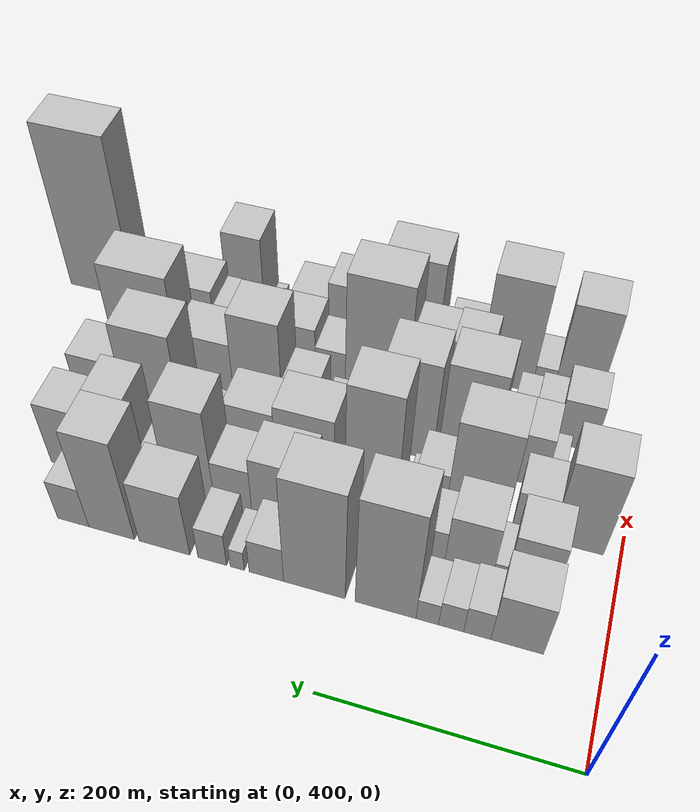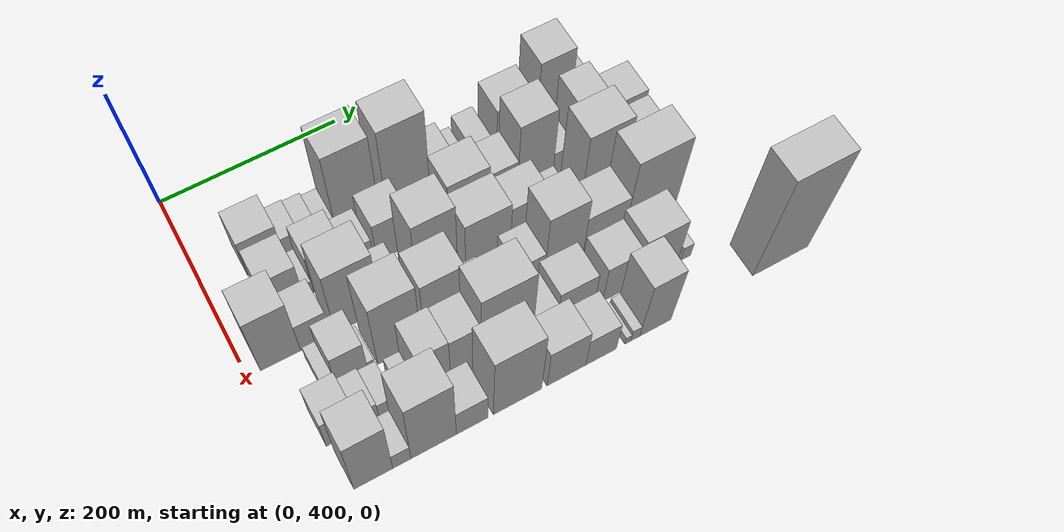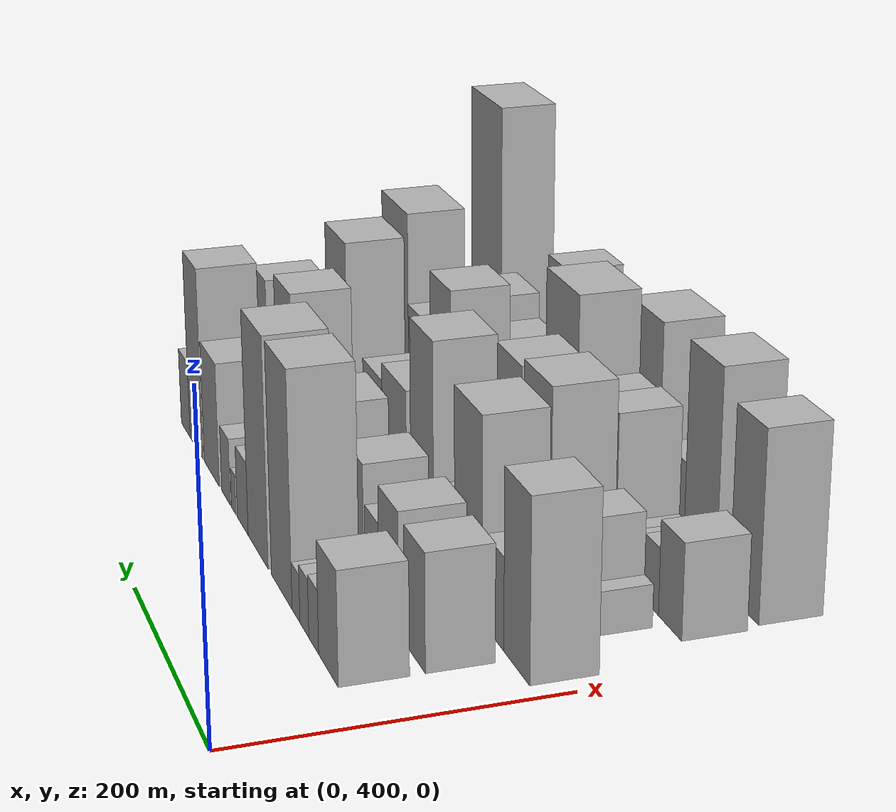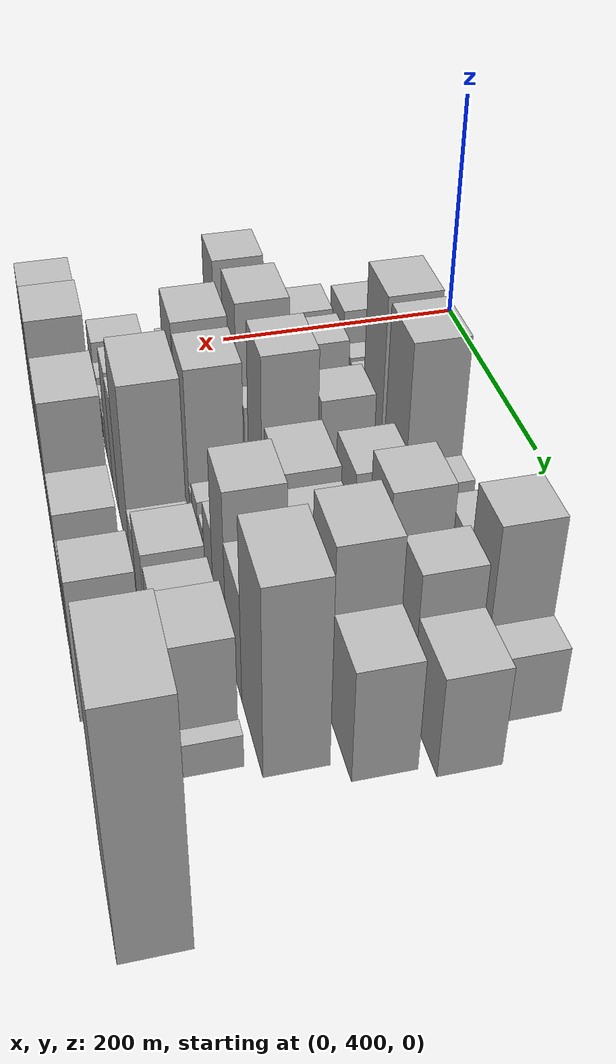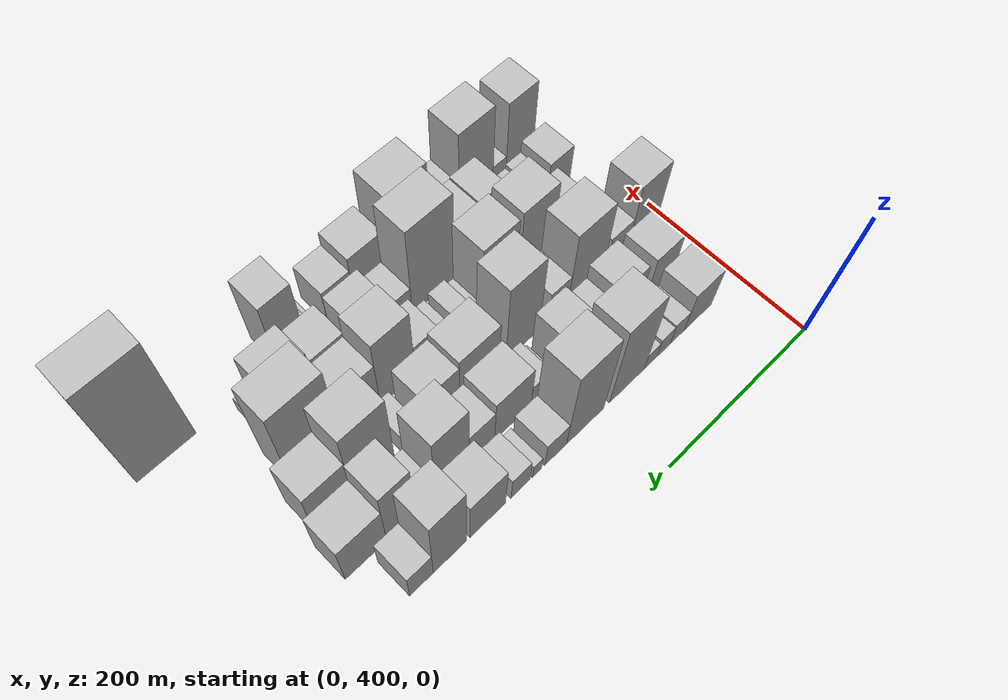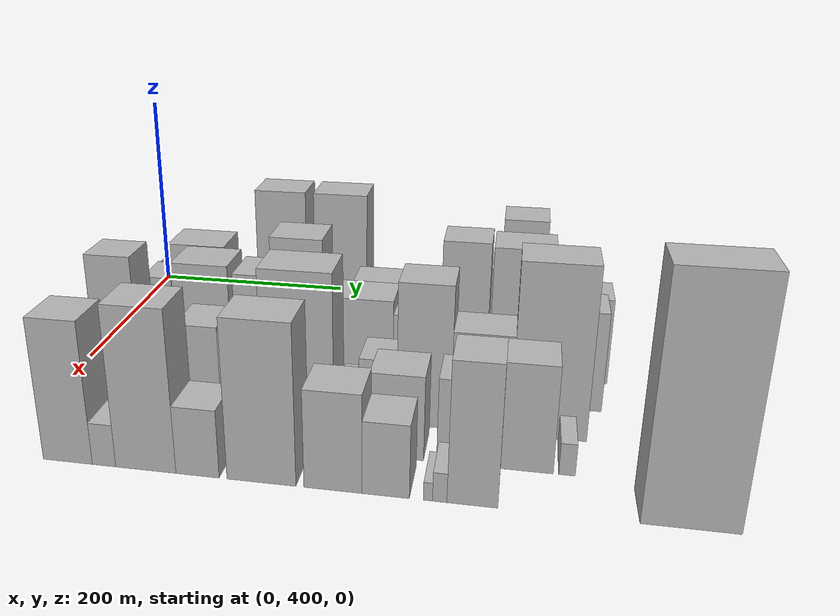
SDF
<sdf version="1.6">
 <world name="default">
  <model name="building_34">
   <static>1</static>
   <pose>100.0000 464.8420 0 0.000000 0.000000 0.000000</pose>
   <link name="link">
    <pose>0 0 34.50 0 0 0</pose>
    <collision name="collision"><geometry><box><size>40.0000 40.3327 69.0000</size></box></geometry></collision>
    <visual name="visual">
     <cast_shadows>0</cast_shadows>
     <geometry><box><size>40.0000 40.3327 69.0000</size></box></geometry>
     <material>
      <script>
       <uri>model://HANNAS_wall/materials/scripts</uri>
       <uri>model://HANNAS_wall/materials/textures</uri>
       <name>vrc/HANNAS_wall</name>
      </script>
     </material>
    </visual>
   </link>
  </model>
  <model name="building_35">
   <static>1</static>
   <pose>100.0000 495.4807 0 0.000000 0.000000 0.000000</pose>
   <link name="link">
    <pose>0 0 19.50 0 0 0</pose>
    <collision name="collision"><geometry><box><size>40.0000 20.9448 39.0000</size></box></geometry></collision>
    <visual name="visual">
     <cast_shadows>0</cast_shadows>
     <geometry><box><size>40.0000 20.9448 39.0000</size></box></geometry>
     <material>
      <script>
       <uri>model://HANNAS_wall/materials/scripts</uri>
       <uri>model://HANNAS_wall/materials/textures</uri>
       <name>vrc/HANNAS_wall</name>
      </script>
     </material>
    </visual>
   </link>
  </model>
  <model name="building_36">
   <static>1</static>
   <pose>100.0000 515.7613 0 0.000000 0.000000 0.000000</pose>
   <link name="link">
    <pose>0 0 18.00 0 0 0</pose>
    <collision name="collision"><geometry><box><size>40.0000 19.6164 36.0000</size></box></geometry></collision>
    <visual name="visual">
     <cast_shadows>0</cast_shadows>
     <geometry><box><size>40.0000 19.6164 36.0000</size></box></geometry>
     <material>
      <script>
       <uri>model://HANNAS_wall/materials/scripts</uri>
       <uri>model://HANNAS_wall/materials/textures</uri>
       <name>vrc/HANNAS_wall</name>
      </script>
     </material>
    </visual>
   </link>
  </model>
  <model name="building_37">
   <static>1</static>
   <pose>100.0000 534.4248 0 0.000000 0.000000 0.000000</pose>
   <link name="link">
    <pose>0 0 15.00 0 0 0</pose>
    <collision name="collision"><geometry><box><size>40.0000 17.7105 30.0000</size></box></geometry></collision>
    <visual name="visual">
     <cast_shadows>0</cast_shadows>
     <geometry><box><size>40.0000 17.7105 30.0000</size></box></geometry>
     <material>
      <script>
       <uri>model://HANNAS_wall/materials/scripts</uri>
       <uri>model://HANNAS_wall/materials/textures</uri>
       <name>vrc/HANNAS_wall</name>
      </script>
     </material>
    </visual>
   </link>
  </model>
  <model name="building_38">
   <static>1</static>
   <pose>100.0000 567.6090 0 0.000000 0.000000 0.000000</pose>
   <link name="link">
    <pose>0 0 73.50 0 0 0</pose>
    <collision name="collision"><geometry><box><size>40.0000 48.6578 147.0000</size></box></geometry></collision>
    <visual name="visual">
     <cast_shadows>0</cast_shadows>
     <geometry><box><size>40.0000 48.6578 147.0000</size></box></geometry>
     <material>
      <script>
       <uri>model://HANNAS_wall/materials/scripts</uri>
       <uri>model://HANNAS_wall/materials/textures</uri>
       <name>vrc/HANNAS_wall</name>
      </script>
     </material>
    </visual>
   </link>
  </model>
  <model name="building_39">
   <static>1</static>
   <pose>100.0000 625.2017 0 0.000000 0.000000 0.000000</pose>
   <link name="link">
    <pose>0 0 73.50 0 0 0</pose>
    <collision name="collision"><geometry><box><size>40.0000 50.5275 147.0000</size></box></geometry></collision>
    <visual name="visual">
     <cast_shadows>0</cast_shadows>
     <geometry><box><size>40.0000 50.5275 147.0000</size></box></geometry>
     <material>
      <script>
       <uri>model://HANNAS_wall/materials/scripts</uri>
       <uri>model://HANNAS_wall/materials/textures</uri>
       <name>vrc/HANNAS_wall</name>
      </script>
     </material>
    </visual>
   </link>
  </model>
  <model name="building_40">
   <static>1</static>
   <pose>100.0000 664.7520 0 0.000000 0.000000 0.000000</pose>
   <link name="link">
    <pose>0 0 24.00 0 0 0</pose>
    <collision name="collision"><geometry><box><size>40.0000 28.5732 48.0000</size></box></geometry></collision>
    <visual name="visual">
     <cast_shadows>0</cast_shadows>
     <geometry><box><size>40.0000 28.5732 48.0000</size></box></geometry>
     <material>
      <script>
       <uri>model://HANNAS_wall/materials/scripts</uri>
       <uri>model://HANNAS_wall/materials/textures</uri>
       <name>vrc/HANNAS_wall</name>
      </script>
     </material>
    </visual>
   </link>
  </model>
  <model name="building_41">
   <static>1</static>
   <pose>100.0000 689.0371 0 0.000000 0.000000 0.000000</pose>
   <link name="link">
    <pose>0 0 13.50 0 0 0</pose>
    <collision name="collision"><geometry><box><size>40.0000 11.9969 27.0000</size></box></geometry></collision>
    <visual name="visual">
     <cast_shadows>0</cast_shadows>
     <geometry><box><size>40.0000 11.9969 27.0000</size></box></geometry>
     <material>
      <script>
       <uri>model://HANNAS_wall/materials/scripts</uri>
       <uri>model://HANNAS_wall/materials/textures</uri>
       <name>vrc/HANNAS_wall</name>
      </script>
     </material>
    </visual>
   </link>
  </model>
  <model name="building_42">
   <static>1</static>
   <pose>100.0000 710.2191 0 0.000000 0.000000 0.000000</pose>
   <link name="link">
    <pose>0 0 22.50 0 0 0</pose>
    <collision name="collision"><geometry><box><size>40.0000 24.3671 45.0000</size></box></geometry></collision>
    <visual name="visual">
     <cast_shadows>0</cast_shadows>
     <geometry><box><size>40.0000 24.3671 45.0000</size></box></geometry>
     <material>
      <script>
       <uri>model://HANNAS_wall/materials/scripts</uri>
       <uri>model://HANNAS_wall/materials/textures</uri>
       <name>vrc/HANNAS_wall</name>
      </script>
     </material>
    </visual>
   </link>
  </model>
  <model name="building_43">
   <static>1</static>
   <pose>100.0000 751.3735 0 0.000000 0.000000 0.000000</pose>
   <link name="link">
    <pose>0 0 42.00 0 0 0</pose>
    <collision name="collision"><geometry><box><size>40.0000 43.9418 84.0000</size></box></geometry></collision>
    <visual name="visual">
     <cast_shadows>0</cast_shadows>
     <geometry><box><size>40.0000 43.9418 84.0000</size></box></geometry>
     <material>
      <script>
       <uri>model://HANNAS_wall/materials/scripts</uri>
       <uri>model://HANNAS_wall/materials/textures</uri>
       <name>vrc/HANNAS_wall</name>
      </script>
     </material>
    </visual>
   </link>
  </model>
  <model name="building_44">
   <static>1</static>
   <pose>100.0000 797.4635 0 0.000000 0.000000 0.000000</pose>
   <link name="link">
    <pose>0 0 66.00 0 0 0</pose>
    <collision name="collision"><geometry><box><size>40.0000 40.2381 132.0000</size></box></geometry></collision>
    <visual name="visual">
     <cast_shadows>0</cast_shadows>
     <geometry><box><size>40.0000 40.2381 132.0000</size></box></geometry>
     <material>
      <script>
       <uri>model://HANNAS_wall/materials/scripts</uri>
       <uri>model://HANNAS_wall/materials/textures</uri>
       <name>vrc/HANNAS_wall</name>
      </script>
     </material>
    </visual>
   </link>
  </model>
  <model name="building_45">
   <static>1</static>
   <pose>100.0000 831.5368 0 0.000000 0.000000 0.000000</pose>
   <link name="link">
    <pose>0 0 27.00 0 0 0</pose>
    <collision name="collision"><geometry><box><size>40.0000 27.9085 54.0000</size></box></geometry></collision>
    <visual name="visual">
     <cast_shadows>0</cast_shadows>
     <geometry><box><size>40.0000 27.9085 54.0000</size></box></geometry>
     <material>
      <script>
       <uri>model://HANNAS_wall/materials/scripts</uri>
       <uri>model://HANNAS_wall/materials/textures</uri>
       <name>vrc/HANNAS_wall</name>
      </script>
     </material>
    </visual>
   </link>
  </model>
  <model name="building_83">
   <static>1</static>
   <pose>149.0000 464.2400 0 0.000000 0.000000 0.000000</pose>
   <link name="link">
    <pose>0 0 36.00 0 0 0</pose>
    <collision name="collision"><geometry><box><size>40.0000 38.5891 72.0000</size></box></geometry></collision>
    <visual name="visual">
     <cast_shadows>0</cast_shadows>
     <geometry><box><size>40.0000 38.5891 72.0000</size></box></geometry>
     <material>
      <script>
       <uri>model://HANNAS_wall/materials/scripts</uri>
       <uri>model://HANNAS_wall/materials/textures</uri>
       <name>vrc/HANNAS_wall</name>
      </script>
     </material>
    </visual>
   </link>
  </model>
  <model name="building_84">
   <static>1</static>
   <pose>149.0000 488.9925 0 0.000000 0.000000 0.000000</pose>
   <link name="link">
    <pose>0 0 13.50 0 0 0</pose>
    <collision name="collision"><geometry><box><size>40.0000 10.9159 27.0000</size></box></geometry></collision>
    <visual name="visual">
     <cast_shadows>0</cast_shadows>
     <geometry><box><size>40.0000 10.9159 27.0000</size></box></geometry>
     <material>
      <script>
       <uri>model://HANNAS_wall/materials/scripts</uri>
       <uri>model://HANNAS_wall/materials/textures</uri>
       <name>vrc/HANNAS_wall</name>
      </script>
     </material>
    </visual>
   </link>
  </model>
  <model name="building_85">
   <static>1</static>
   <pose>149.0000 513.8395 0 0.000000 0.000000 0.000000</pose>
   <link name="link">
    <pose>0 0 37.50 0 0 0</pose>
    <collision name="collision"><geometry><box><size>40.0000 38.7780 75.0000</size></box></geometry></collision>
    <visual name="visual">
     <cast_shadows>0</cast_shadows>
     <geometry><box><size>40.0000 38.7780 75.0000</size></box></geometry>
     <material>
      <script>
       <uri>model://HANNAS_wall/materials/scripts</uri>
       <uri>model://HANNAS_wall/materials/textures</uri>
       <name>vrc/HANNAS_wall</name>
      </script>
     </material>
    </visual>
   </link>
  </model>
  <model name="building_86">
   <static>1</static>
   <pose>149.0000 547.3822 0 0.000000 0.000000 0.000000</pose>
   <link name="link">
    <pose>0 0 25.50 0 0 0</pose>
    <collision name="collision"><geometry><box><size>40.0000 28.3073 51.0000</size></box></geometry></collision>
    <visual name="visual">
     <cast_shadows>0</cast_shadows>
     <geometry><box><size>40.0000 28.3073 51.0000</size></box></geometry>
     <material>
      <script>
       <uri>model://HANNAS_wall/materials/scripts</uri>
       <uri>model://HANNAS_wall/materials/textures</uri>
       <name>vrc/HANNAS_wall</name>
      </script>
     </material>
    </visual>
   </link>
  </model>
  <model name="building_87">
   <static>1</static>
   <pose>149.0000 584.1058 0 0.000000 0.000000 0.000000</pose>
   <link name="link">
    <pose>0 0 37.50 0 0 0</pose>
    <collision name="collision"><geometry><box><size>40.0000 39.1398 75.0000</size></box></geometry></collision>
    <visual name="visual">
     <cast_shadows>0</cast_shadows>
     <geometry><box><size>40.0000 39.1398 75.0000</size></box></geometry>
     <material>
      <script>
       <uri>model://HANNAS_wall/materials/scripts</uri>
       <uri>model://HANNAS_wall/materials/textures</uri>
       <name>vrc/HANNAS_wall</name>
      </script>
     </material>
    </visual>
   </link>
  </model>
  <model name="building_88">
   <static>1</static>
   <pose>149.0000 616.5047 0 0.000000 0.000000 0.000000</pose>
   <link name="link">
    <pose>0 0 10.50 0 0 0</pose>
    <collision name="collision"><geometry><box><size>40.0000 9.6579 21.0000</size></box></geometry></collision>
    <visual name="visual">
     <cast_shadows>0</cast_shadows>
     <geometry><box><size>40.0000 9.6579 21.0000</size></box></geometry>
     <material>
      <script>
       <uri>model://HANNAS_wall/materials/scripts</uri>
       <uri>model://HANNAS_wall/materials/textures</uri>
       <name>vrc/HANNAS_wall</name>
      </script>
     </material>
    </visual>
   </link>
  </model>
  <model name="building_89">
   <static>1</static>
   <pose>149.0000 633.7374 0 0.000000 0.000000 0.000000</pose>
   <link name="link">
    <pose>0 0 21.00 0 0 0</pose>
    <collision name="collision"><geometry><box><size>40.0000 24.8075 42.0000</size></box></geometry></collision>
    <visual name="visual">
     <cast_shadows>0</cast_shadows>
     <geometry><box><size>40.0000 24.8075 42.0000</size></box></geometry>
     <material>
      <script>
       <uri>model://HANNAS_wall/materials/scripts</uri>
       <uri>model://HANNAS_wall/materials/textures</uri>
       <name>vrc/HANNAS_wall</name>
      </script>
     </material>
    </visual>
   </link>
  </model>
  <model name="building_90">
   <static>1</static>
   <pose>149.0000 670.0662 0 0.000000 0.000000 0.000000</pose>
   <link name="link">
    <pose>0 0 40.50 0 0 0</pose>
    <collision name="collision"><geometry><box><size>40.0000 47.8502 81.0000</size></box></geometry></collision>
    <visual name="visual">
     <cast_shadows>0</cast_shadows>
     <geometry><box><size>40.0000 47.8502 81.0000</size></box></geometry>
     <material>
      <script>
       <uri>model://HANNAS_wall/materials/scripts</uri>
       <uri>model://HANNAS_wall/materials/textures</uri>
       <name>vrc/HANNAS_wall</name>
      </script>
     </material>
    </visual>
   </link>
  </model>
  <model name="building_91">
   <static>1</static>
   <pose>149.0000 710.2946 0 0.000000 0.000000 0.000000</pose>
   <link name="link">
    <pose>0 0 31.50 0 0 0</pose>
    <collision name="collision"><geometry><box><size>40.0000 32.6065 63.0000</size></box></geometry></collision>
    <visual name="visual">
     <cast_shadows>0</cast_shadows>
     <geometry><box><size>40.0000 32.6065 63.0000</size></box></geometry>
     <material>
      <script>
       <uri>model://HANNAS_wall/materials/scripts</uri>
       <uri>model://HANNAS_wall/materials/textures</uri>
       <name>vrc/HANNAS_wall</name>
      </script>
     </material>
    </visual>
   </link>
  </model>
  <model name="building_92">
   <static>1</static>
   <pose>149.0000 747.6645 0 0.000000 0.000000 0.000000</pose>
   <link name="link">
    <pose>0 0 63.00 0 0 0</pose>
    <collision name="collision"><geometry><box><size>40.0000 42.1333 126.0000</size></box></geometry></collision>
    <visual name="visual">
     <cast_shadows>0</cast_shadows>
     <geometry><box><size>40.0000 42.1333 126.0000</size></box></geometry>
     <material>
      <script>
       <uri>model://HANNAS_wall/materials/scripts</uri>
       <uri>model://HANNAS_wall/materials/textures</uri>
       <name>vrc/HANNAS_wall</name>
      </script>
     </material>
    </visual>
   </link>
  </model>
  <model name="building_93">
   <static>1</static>
   <pose>149.0000 780.6941 0 0.000000 0.000000 0.000000</pose>
   <link name="link">
    <pose>0 0 21.00 0 0 0</pose>
    <collision name="collision"><geometry><box><size>40.0000 23.9260 42.0000</size></box></geometry></collision>
    <visual name="visual">
     <cast_shadows>0</cast_shadows>
     <geometry><box><size>40.0000 23.9260 42.0000</size></box></geometry>
     <material>
      <script>
       <uri>model://HANNAS_wall/materials/scripts</uri>
       <uri>model://HANNAS_wall/materials/textures</uri>
       <name>vrc/HANNAS_wall</name>
      </script>
     </material>
    </visual>
   </link>
  </model>
  <model name="building_94">
   <static>1</static>
   <pose>149.0000 809.8455 0 0.000000 0.000000 0.000000</pose>
   <link name="link">
    <pose>0 0 57.00 0 0 0</pose>
    <collision name="collision"><geometry><box><size>40.0000 34.3768 114.0000</size></box></geometry></collision>
    <visual name="visual">
     <cast_shadows>0</cast_shadows>
     <geometry><box><size>40.0000 34.3768 114.0000</size></box></geometry>
     <material>
      <script>
       <uri>model://HANNAS_wall/materials/scripts</uri>
       <uri>model://HANNAS_wall/materials/textures</uri>
       <name>vrc/HANNAS_wall</name>
      </script>
     </material>
    </visual>
   </link>
  </model>
  <model name="building_95">
   <static>1</static>
   <pose>149.0000 851.2363 0 0.000000 0.000000 0.000000</pose>
   <link name="link">
    <pose>0 0 40.50 0 0 0</pose>
    <collision name="collision"><geometry><box><size>40.0000 48.4048 81.0000</size></box></geometry></collision>
    <visual name="visual">
     <cast_shadows>0</cast_shadows>
     <geometry><box><size>40.0000 48.4048 81.0000</size></box></geometry>
     <material>
      <script>
       <uri>model://HANNAS_wall/materials/scripts</uri>
       <uri>model://HANNAS_wall/materials/textures</uri>
       <name>vrc/HANNAS_wall</name>
      </script>
     </material>
    </visual>
   </link>
  </model>
  <model name="building_135">
   <static>1</static>
   <pose>198.0000 435.4291 0 0.000000 0.000000 0.000000</pose>
   <link name="link">
    <pose>0 0 55.50 0 0 0</pose>
    <collision name="collision"><geometry><box><size>40.0000 42.5235 111.0000</size></box></geometry></collision>
    <visual name="visual">
     <cast_shadows>0</cast_shadows>
     <geometry><box><size>40.0000 42.5235 111.0000</size></box></geometry>
     <material>
      <script>
       <uri>model://HANNAS_wall/materials/scripts</uri>
       <uri>model://HANNAS_wall/materials/textures</uri>
       <name>vrc/HANNAS_wall</name>
      </script>
     </material>
    </visual>
   </link>
  </model>
  <model name="building_136">
   <static>1</static>
   <pose>198.0000 472.8074 0 0.000000 0.000000 0.000000</pose>
   <link name="link">
    <pose>0 0 28.50 0 0 0</pose>
    <collision name="collision"><geometry><box><size>40.0000 32.2330 57.0000</size></box></geometry></collision>
    <visual name="visual">
     <cast_shadows>0</cast_shadows>
     <geometry><box><size>40.0000 32.2330 57.0000</size></box></geometry>
     <material>
      <script>
       <uri>model://HANNAS_wall/materials/scripts</uri>
       <uri>model://HANNAS_wall/materials/textures</uri>
       <name>vrc/HANNAS_wall</name>
      </script>
     </material>
    </visual>
   </link>
  </model>
  <model name="building_137">
   <static>1</static>
   <pose>198.0000 518.8734 0 0.000000 0.000000 0.000000</pose>
   <link name="link">
    <pose>0 0 63.00 0 0 0</pose>
    <collision name="collision"><geometry><box><size>40.0000 49.8991 126.0000</size></box></geometry></collision>
    <visual name="visual">
     <cast_shadows>0</cast_shadows>
     <geometry><box><size>40.0000 49.8991 126.0000</size></box></geometry>
     <material>
      <script>
       <uri>model://HANNAS_wall/materials/scripts</uri>
       <uri>model://HANNAS_wall/materials/textures</uri>
       <name>vrc/HANNAS_wall</name>
      </script>
     </material>
    </visual>
   </link>
  </model>
  <model name="building_138">
   <static>1</static>
   <pose>198.0000 557.5370 0 0.000000 0.000000 0.000000</pose>
   <link name="link">
    <pose>0 0 27.00 0 0 0</pose>
    <collision name="collision"><geometry><box><size>40.0000 27.4281 54.0000</size></box></geometry></collision>
    <visual name="visual">
     <cast_shadows>0</cast_shadows>
     <geometry><box><size>40.0000 27.4281 54.0000</size></box></geometry>
     <material>
      <script>
       <uri>model://HANNAS_wall/materials/scripts</uri>
       <uri>model://HANNAS_wall/materials/textures</uri>
       <name>vrc/HANNAS_wall</name>
      </script>
     </material>
    </visual>
   </link>
  </model>
  <model name="building_139">
   <static>1</static>
   <pose>198.0000 575.2165 0 0.000000 0.000000 0.000000</pose>
   <link name="link">
    <pose>0 0 9.00 0 0 0</pose>
    <collision name="collision"><geometry><box><size>40.0000 7.9308 18.0000</size></box></geometry></collision>
    <visual name="visual">
     <cast_shadows>0</cast_shadows>
     <geometry><box><size>40.0000 7.9308 18.0000</size></box></geometry>
     <material>
      <script>
       <uri>model://HANNAS_wall/materials/scripts</uri>
       <uri>model://HANNAS_wall/materials/textures</uri>
       <name>vrc/HANNAS_wall</name>
      </script>
     </material>
    </visual>
   </link>
  </model>
  <model name="building_140">
   <static>1</static>
   <pose>198.0000 607.0164 0 0.000000 0.000000 0.000000</pose>
   <link name="link">
    <pose>0 0 69.00 0 0 0</pose>
    <collision name="collision"><geometry><box><size>40.0000 45.6691 138.0000</size></box></geometry></collision>
    <visual name="visual">
     <cast_shadows>0</cast_shadows>
     <geometry><box><size>40.0000 45.6691 138.0000</size></box></geometry>
     <material>
      <script>
       <uri>model://HANNAS_wall/materials/scripts</uri>
       <uri>model://HANNAS_wall/materials/textures</uri>
       <name>vrc/HANNAS_wall</name>
      </script>
     </material>
    </visual>
   </link>
  </model>
  <model name="building_141">
   <static>1</static>
   <pose>198.0000 664.7125 0 0.000000 0.000000 0.000000</pose>
   <link name="link">
    <pose>0 0 43.50 0 0 0</pose>
    <collision name="collision"><geometry><box><size>40.0000 51.7230 87.0000</size></box></geometry></collision>
    <visual name="visual">
     <cast_shadows>0</cast_shadows>
     <geometry><box><size>40.0000 51.7230 87.0000</size></box></geometry>
     <material>
      <script>
       <uri>model://HANNAS_wall/materials/scripts</uri>
       <uri>model://HANNAS_wall/materials/textures</uri>
       <name>vrc/HANNAS_wall</name>
      </script>
     </material>
    </visual>
   </link>
  </model>
  <model name="building_142">
   <static>1</static>
   <pose>198.0000 712.3191 0 0.000000 0.000000 0.000000</pose>
   <link name="link">
    <pose>0 0 37.50 0 0 0</pose>
    <collision name="collision"><geometry><box><size>40.0000 43.4901 75.0000</size></box></geometry></collision>
    <visual name="visual">
     <cast_shadows>0</cast_shadows>
     <geometry><box><size>40.0000 43.4901 75.0000</size></box></geometry>
     <material>
      <script>
       <uri>model://HANNAS_wall/materials/scripts</uri>
       <uri>model://HANNAS_wall/materials/textures</uri>
       <name>vrc/HANNAS_wall</name>
      </script>
     </material>
    </visual>
   </link>
  </model>
  <model name="building_143">
   <static>1</static>
   <pose>198.0000 751.0375 0 0.000000 0.000000 0.000000</pose>
   <link name="link">
    <pose>0 0 19.50 0 0 0</pose>
    <collision name="collision"><geometry><box><size>40.0000 21.9467 39.0000</size></box></geometry></collision>
    <visual name="visual">
     <cast_shadows>0</cast_shadows>
     <geometry><box><size>40.0000 21.9467 39.0000</size></box></geometry>
     <material>
      <script>
       <uri>model://HANNAS_wall/materials/scripts</uri>
       <uri>model://HANNAS_wall/materials/textures</uri>
       <name>vrc/HANNAS_wall</name>
      </script>
     </material>
    </visual>
   </link>
  </model>
  <model name="building_144">
   <static>1</static>
   <pose>198.0000 797.0675 0 0.000000 0.000000 0.000000</pose>
   <link name="link">
    <pose>0 0 70.50 0 0 0</pose>
    <collision name="collision"><geometry><box><size>40.0000 50.1134 141.0000</size></box></geometry></collision>
    <visual name="visual">
     <cast_shadows>0</cast_shadows>
     <geometry><box><size>40.0000 50.1134 141.0000</size></box></geometry>
     <material>
      <script>
       <uri>model://HANNAS_wall/materials/scripts</uri>
       <uri>model://HANNAS_wall/materials/textures</uri>
       <name>vrc/HANNAS_wall</name>
      </script>
     </material>
    </visual>
   </link>
  </model>
  <model name="building_145">
   <static>1</static>
   <pose>198.0000 844.8766 0 0.000000 0.000000 0.000000</pose>
   <link name="link">
    <pose>0 0 45.00 0 0 0</pose>
    <collision name="collision"><geometry><box><size>40.0000 45.5047 90.0000</size></box></geometry></collision>
    <visual name="visual">
     <cast_shadows>0</cast_shadows>
     <geometry><box><size>40.0000 45.5047 90.0000</size></box></geometry>
     <material>
      <script>
       <uri>model://HANNAS_wall/materials/scripts</uri>
       <uri>model://HANNAS_wall/materials/textures</uri>
       <name>vrc/HANNAS_wall</name>
      </script>
     </material>
    </visual>
   </link>
  </model>
  <model name="building_176">
   <static>1</static>
   <pose>247.0000 463.9547 0 0.000000 0.000000 0.000000</pose>
   <link name="link">
    <pose>0 0 13.50 0 0 0</pose>
    <collision name="collision"><geometry><box><size>40.0000 13.2335 27.0000</size></box></geometry></collision>
    <visual name="visual">
     <cast_shadows>0</cast_shadows>
     <geometry><box><size>40.0000 13.2335 27.0000</size></box></geometry>
     <material>
      <script>
       <uri>model://HANNAS_wall/materials/scripts</uri>
       <uri>model://HANNAS_wall/materials/textures</uri>
       <name>vrc/HANNAS_wall</name>
      </script>
     </material>
    </visual>
   </link>
  </model>
  <model name="building_177">
   <static>1</static>
   <pose>247.0000 487.5610 0 0.000000 0.000000 0.000000</pose>
   <link name="link">
    <pose>0 0 33.00 0 0 0</pose>
    <collision name="collision"><geometry><box><size>40.0000 33.9789 66.0000</size></box></geometry></collision>
    <visual name="visual">
     <cast_shadows>0</cast_shadows>
     <geometry><box><size>40.0000 33.9789 66.0000</size></box></geometry>
     <material>
      <script>
       <uri>model://HANNAS_wall/materials/scripts</uri>
       <uri>model://HANNAS_wall/materials/textures</uri>
       <name>vrc/HANNAS_wall</name>
      </script>
     </material>
    </visual>
   </link>
  </model>
  <model name="building_178">
   <static>1</static>
   <pose>247.0000 508.5091 0 0.000000 0.000000 0.000000</pose>
   <link name="link">
    <pose>0 0 9.00 0 0 0</pose>
    <collision name="collision"><geometry><box><size>40.0000 7.9173 18.0000</size></box></geometry></collision>
    <visual name="visual">
     <cast_shadows>0</cast_shadows>
     <geometry><box><size>40.0000 7.9173 18.0000</size></box></geometry>
     <material>
      <script>
       <uri>model://HANNAS_wall/materials/scripts</uri>
       <uri>model://HANNAS_wall/materials/textures</uri>
       <name>vrc/HANNAS_wall</name>
      </script>
     </material>
    </visual>
   </link>
  </model>
  <model name="building_179">
   <static>1</static>
   <pose>247.0000 539.0557 0 0.000000 0.000000 0.000000</pose>
   <link name="link">
    <pose>0 0 64.50 0 0 0</pose>
    <collision name="collision"><geometry><box><size>40.0000 47.1760 129.0000</size></box></geometry></collision>
    <visual name="visual">
     <cast_shadows>0</cast_shadows>
     <geometry><box><size>40.0000 47.1760 129.0000</size></box></geometry>
     <material>
      <script>
       <uri>model://HANNAS_wall/materials/scripts</uri>
       <uri>model://HANNAS_wall/materials/textures</uri>
       <name>vrc/HANNAS_wall</name>
      </script>
     </material>
    </visual>
   </link>
  </model>
  <model name="building_180">
   <static>1</static>
   <pose>247.0000 589.5727 0 0.000000 0.000000 0.000000</pose>
   <link name="link">
    <pose>0 0 61.50 0 0 0</pose>
    <collision name="collision"><geometry><box><size>40.0000 45.8581 123.0000</size></box></geometry></collision>
    <visual name="visual">
     <cast_shadows>0</cast_shadows>
     <geometry><box><size>40.0000 45.8581 123.0000</size></box></geometry>
     <material>
      <script>
       <uri>model://HANNAS_wall/materials/scripts</uri>
       <uri>model://HANNAS_wall/materials/textures</uri>
       <name>vrc/HANNAS_wall</name>
      </script>
     </material>
    </visual>
   </link>
  </model>
  <model name="building_181">
   <static>1</static>
   <pose>247.0000 618.2442 0 0.000000 0.000000 0.000000</pose>
   <link name="link">
    <pose>0 0 12.00 0 0 0</pose>
    <collision name="collision"><geometry><box><size>40.0000 11.4848 24.0000</size></box></geometry></collision>
    <visual name="visual">
     <cast_shadows>0</cast_shadows>
     <geometry><box><size>40.0000 11.4848 24.0000</size></box></geometry>
     <material>
      <script>
       <uri>model://HANNAS_wall/materials/scripts</uri>
       <uri>model://HANNAS_wall/materials/textures</uri>
       <name>vrc/HANNAS_wall</name>
      </script>
     </material>
    </visual>
   </link>
  </model>
  <model name="building_182">
   <static>1</static>
   <pose>247.0000 634.6704 0 0.000000 0.000000 0.000000</pose>
   <link name="link">
    <pose>0 0 18.00 0 0 0</pose>
    <collision name="collision"><geometry><box><size>40.0000 21.3677 36.0000</size></box></geometry></collision>
    <visual name="visual">
     <cast_shadows>0</cast_shadows>
     <geometry><box><size>40.0000 21.3677 36.0000</size></box></geometry>
     <material>
      <script>
       <uri>model://HANNAS_wall/materials/scripts</uri>
       <uri>model://HANNAS_wall/materials/textures</uri>
       <name>vrc/HANNAS_wall</name>
      </script>
     </material>
    </visual>
   </link>
  </model>
  <model name="building_183">
   <static>1</static>
   <pose>247.0000 658.0004 0 0.000000 0.000000 0.000000</pose>
   <link name="link">
    <pose>0 0 15.00 0 0 0</pose>
    <collision name="collision"><geometry><box><size>40.0000 15.2922 30.0000</size></box></geometry></collision>
    <visual name="visual">
     <cast_shadows>0</cast_shadows>
     <geometry><box><size>40.0000 15.2922 30.0000</size></box></geometry>
     <material>
      <script>
       <uri>model://HANNAS_wall/materials/scripts</uri>
       <uri>model://HANNAS_wall/materials/textures</uri>
       <name>vrc/HANNAS_wall</name>
      </script>
     </material>
    </visual>
   </link>
  </model>
  <model name="building_184">
   <static>1</static>
   <pose>247.0000 685.2985 0 0.000000 0.000000 0.000000</pose>
   <link name="link">
    <pose>0 0 28.50 0 0 0</pose>
    <collision name="collision"><geometry><box><size>40.0000 31.3041 57.0000</size></box></geometry></collision>
    <visual name="visual">
     <cast_shadows>0</cast_shadows>
     <geometry><box><size>40.0000 31.3041 57.0000</size></box></geometry>
     <material>
      <script>
       <uri>model://HANNAS_wall/materials/scripts</uri>
       <uri>model://HANNAS_wall/materials/textures</uri>
       <name>vrc/HANNAS_wall</name>
      </script>
     </material>
    </visual>
   </link>
  </model>
  <model name="building_185">
   <static>1</static>
   <pose>247.0000 723.0035 0 0.000000 0.000000 0.000000</pose>
   <link name="link">
    <pose>0 0 63.00 0 0 0</pose>
    <collision name="collision"><geometry><box><size>40.0000 44.1059 126.0000</size></box></geometry></collision>
    <visual name="visual">
     <cast_shadows>0</cast_shadows>
     <geometry><box><size>40.0000 44.1059 126.0000</size></box></geometry>
     <material>
      <script>
       <uri>model://HANNAS_wall/materials/scripts</uri>
       <uri>model://HANNAS_wall/materials/textures</uri>
       <name>vrc/HANNAS_wall</name>
      </script>
     </material>
    </visual>
   </link>
  </model>
  <model name="building_186">
   <static>1</static>
   <pose>247.0000 769.2502 0 0.000000 0.000000 0.000000</pose>
   <link name="link">
    <pose>0 0 43.50 0 0 0</pose>
    <collision name="collision"><geometry><box><size>40.0000 48.3873 87.0000</size></box></geometry></collision>
    <visual name="visual">
     <cast_shadows>0</cast_shadows>
     <geometry><box><size>40.0000 48.3873 87.0000</size></box></geometry>
     <material>
      <script>
       <uri>model://HANNAS_wall/materials/scripts</uri>
       <uri>model://HANNAS_wall/materials/textures</uri>
       <name>vrc/HANNAS_wall</name>
      </script>
     </material>
    </visual>
   </link>
  </model>
  <model name="building_187">
   <static>1</static>
   <pose>247.0000 823.2856 0 0.000000 0.000000 0.000000</pose>
   <link name="link">
    <pose>0 0 75.00 0 0 0</pose>
    <collision name="collision"><geometry><box><size>40.0000 59.6836 150.0000</size></box></geometry></collision>
    <visual name="visual">
     <cast_shadows>0</cast_shadows>
     <geometry><box><size>40.0000 59.6836 150.0000</size></box></geometry>
     <material>
      <script>
       <uri>model://HANNAS_wall/materials/scripts</uri>
       <uri>model://HANNAS_wall/materials/textures</uri>
       <name>vrc/HANNAS_wall</name>
      </script>
     </material>
    </visual>
   </link>
  </model>
  <model name="building_226">
   <static>1</static>
   <pose>296.0000 453.4264 0 0.000000 0.000000 0.000000</pose>
   <link name="link">
    <pose>0 0 30.00 0 0 0</pose>
    <collision name="collision"><geometry><box><size>40.0000 33.5715 60.0000</size></box></geometry></collision>
    <visual name="visual">
     <cast_shadows>0</cast_shadows>
     <geometry><box><size>40.0000 33.5715 60.0000</size></box></geometry>
     <material>
      <script>
       <uri>model://HANNAS_wall/materials/scripts</uri>
       <uri>model://HANNAS_wall/materials/textures</uri>
       <name>vrc/HANNAS_wall</name>
      </script>
     </material>
    </visual>
   </link>
  </model>
  <model name="building_227">
   <static>1</static>
   <pose>296.0000 481.0916 0 0.000000 0.000000 0.000000</pose>
   <link name="link">
    <pose>0 0 21.00 0 0 0</pose>
    <collision name="collision"><geometry><box><size>40.0000 21.7590 42.0000</size></box></geometry></collision>
    <visual name="visual">
     <cast_shadows>0</cast_shadows>
     <geometry><box><size>40.0000 21.7590 42.0000</size></box></geometry>
     <material>
      <script>
       <uri>model://HANNAS_wall/materials/scripts</uri>
       <uri>model://HANNAS_wall/materials/textures</uri>
       <name>vrc/HANNAS_wall</name>
      </script>
     </material>
    </visual>
   </link>
  </model>
  <model name="building_228">
   <static>1</static>
   <pose>296.0000 501.3352 0 0.000000 0.000000 0.000000</pose>
   <link name="link">
    <pose>0 0 18.00 0 0 0</pose>
    <collision name="collision"><geometry><box><size>40.0000 18.7280 36.0000</size></box></geometry></collision>
    <visual name="visual">
     <cast_shadows>0</cast_shadows>
     <geometry><box><size>40.0000 18.7280 36.0000</size></box></geometry>
     <material>
      <script>
       <uri>model://HANNAS_wall/materials/scripts</uri>
       <uri>model://HANNAS_wall/materials/textures</uri>
       <name>vrc/HANNAS_wall</name>
      </script>
     </material>
    </visual>
   </link>
  </model>
  <model name="building_229">
   <static>1</static>
   <pose>296.0000 527.1478 0 0.000000 0.000000 0.000000</pose>
   <link name="link">
    <pose>0 0 15.00 0 0 0</pose>
    <collision name="collision"><geometry><box><size>40.0000 16.8973 30.0000</size></box></geometry></collision>
    <visual name="visual">
     <cast_shadows>0</cast_shadows>
     <geometry><box><size>40.0000 16.8973 30.0000</size></box></geometry>
     <material>
      <script>
       <uri>model://HANNAS_wall/materials/scripts</uri>
       <uri>model://HANNAS_wall/materials/textures</uri>
       <name>vrc/HANNAS_wall</name>
      </script>
     </material>
    </visual>
   </link>
  </model>
  <model name="building_230">
   <static>1</static>
   <pose>296.0000 552.1916 0 0.000000 0.000000 0.000000</pose>
   <link name="link">
    <pose>0 0 49.50 0 0 0</pose>
    <collision name="collision"><geometry><box><size>40.0000 33.1902 99.0000</size></box></geometry></collision>
    <visual name="visual">
     <cast_shadows>0</cast_shadows>
     <geometry><box><size>40.0000 33.1902 99.0000</size></box></geometry>
     <material>
      <script>
       <uri>model://HANNAS_wall/materials/scripts</uri>
       <uri>model://HANNAS_wall/materials/textures</uri>
       <name>vrc/HANNAS_wall</name>
      </script>
     </material>
    </visual>
   </link>
  </model>
  <model name="building_231">
   <static>1</static>
   <pose>296.0000 585.4190 0 0.000000 0.000000 0.000000</pose>
   <link name="link">
    <pose>0 0 48.00 0 0 0</pose>
    <collision name="collision"><geometry><box><size>40.0000 33.2647 96.0000</size></box></geometry></collision>
    <visual name="visual">
     <cast_shadows>0</cast_shadows>
     <geometry><box><size>40.0000 33.2647 96.0000</size></box></geometry>
     <material>
      <script>
       <uri>model://HANNAS_wall/materials/scripts</uri>
       <uri>model://HANNAS_wall/materials/textures</uri>
       <name>vrc/HANNAS_wall</name>
      </script>
     </material>
    </visual>
   </link>
  </model>
  <model name="building_232">
   <static>1</static>
   <pose>296.0000 630.5049 0 0.000000 0.000000 0.000000</pose>
   <link name="link">
    <pose>0 0 75.00 0 0 0</pose>
    <collision name="collision"><geometry><box><size>40.0000 56.9070 150.0000</size></box></geometry></collision>
    <visual name="visual">
     <cast_shadows>0</cast_shadows>
     <geometry><box><size>40.0000 56.9070 150.0000</size></box></geometry>
     <material>
      <script>
       <uri>model://HANNAS_wall/materials/scripts</uri>
       <uri>model://HANNAS_wall/materials/textures</uri>
       <name>vrc/HANNAS_wall</name>
      </script>
     </material>
    </visual>
   </link>
  </model>
  <model name="building_233">
   <static>1</static>
   <pose>296.0000 672.8029 0 0.000000 0.000000 0.000000</pose>
   <link name="link">
    <pose>0 0 25.50 0 0 0</pose>
    <collision name="collision"><geometry><box><size>40.0000 27.6890 51.0000</size></box></geometry></collision>
    <visual name="visual">
     <cast_shadows>0</cast_shadows>
     <geometry><box><size>40.0000 27.6890 51.0000</size></box></geometry>
     <material>
      <script>
       <uri>model://HANNAS_wall/materials/scripts</uri>
       <uri>model://HANNAS_wall/materials/textures</uri>
       <name>vrc/HANNAS_wall</name>
      </script>
     </material>
    </visual>
   </link>
  </model>
  <model name="building_234">
   <static>1</static>
   <pose>296.0000 707.7422 0 0.000000 0.000000 0.000000</pose>
   <link name="link">
    <pose>0 0 36.00 0 0 0</pose>
    <collision name="collision"><geometry><box><size>40.0000 42.1898 72.0000</size></box></geometry></collision>
    <visual name="visual">
     <cast_shadows>0</cast_shadows>
     <geometry><box><size>40.0000 42.1898 72.0000</size></box></geometry>
     <material>
      <script>
       <uri>model://HANNAS_wall/materials/scripts</uri>
       <uri>model://HANNAS_wall/materials/textures</uri>
       <name>vrc/HANNAS_wall</name>
      </script>
     </material>
    </visual>
   </link>
  </model>
  <model name="building_235">
   <static>1</static>
   <pose>296.0000 759.3406 0 0.000000 0.000000 0.000000</pose>
   <link name="link">
    <pose>0 0 36.00 0 0 0</pose>
    <collision name="collision"><geometry><box><size>40.0000 41.0069 72.0000</size></box></geometry></collision>
    <visual name="visual">
     <cast_shadows>0</cast_shadows>
     <geometry><box><size>40.0000 41.0069 72.0000</size></box></geometry>
     <material>
      <script>
       <uri>model://HANNAS_wall/materials/scripts</uri>
       <uri>model://HANNAS_wall/materials/textures</uri>
       <name>vrc/HANNAS_wall</name>
      </script>
     </material>
    </visual>
   </link>
  </model>
  <model name="building_236">
   <static>1</static>
   <pose>296.0000 803.1534 0 0.000000 0.000000 0.000000</pose>
   <link name="link">
    <pose>0 0 45.00 0 0 0</pose>
    <collision name="collision"><geometry><box><size>40.0000 46.6186 90.0000</size></box></geometry></collision>
    <visual name="visual">
     <cast_shadows>0</cast_shadows>
     <geometry><box><size>40.0000 46.6186 90.0000</size></box></geometry>
     <material>
      <script>
       <uri>model://HANNAS_wall/materials/scripts</uri>
       <uri>model://HANNAS_wall/materials/textures</uri>
       <name>vrc/HANNAS_wall</name>
      </script>
     </material>
    </visual>
   </link>
  </model>
  <model name="building_237">
   <static>1</static>
   <pose>296.0000 836.5468 0 0.000000 0.000000 0.000000</pose>
   <link name="link">
    <pose>0 0 13.50 0 0 0</pose>
    <collision name="collision"><geometry><box><size>40.0000 12.1683 27.0000</size></box></geometry></collision>
    <visual name="visual">
     <cast_shadows>0</cast_shadows>
     <geometry><box><size>40.0000 12.1683 27.0000</size></box></geometry>
     <material>
      <script>
       <uri>model://HANNAS_wall/materials/scripts</uri>
       <uri>model://HANNAS_wall/materials/textures</uri>
       <name>vrc/HANNAS_wall</name>
      </script>
     </material>
    </visual>
   </link>
  </model>
  <model name="building_273">
   <static>1</static>
   <pose>345.0000 461.0086 0 0.000000 0.000000 0.000000</pose>
   <link name="link">
    <pose>0 0 60.00 0 0 0</pose>
    <collision name="collision"><geometry><box><size>40.0000 40.1163 120.0000</size></box></geometry></collision>
    <visual name="visual">
     <cast_shadows>0</cast_shadows>
     <geometry><box><size>40.0000 40.1163 120.0000</size></box></geometry>
     <material>
      <script>
       <uri>model://HANNAS_wall/materials/scripts</uri>
       <uri>model://HANNAS_wall/materials/textures</uri>
       <name>vrc/HANNAS_wall</name>
      </script>
     </material>
    </visual>
   </link>
  </model>
  <model name="building_274">
   <static>1</static>
   <pose>345.0000 490.5762 0 0.000000 0.000000 0.000000</pose>
   <link name="link">
    <pose>0 0 18.00 0 0 0</pose>
    <collision name="collision"><geometry><box><size>40.0000 19.0188 36.0000</size></box></geometry></collision>
    <visual name="visual">
     <cast_shadows>0</cast_shadows>
     <geometry><box><size>40.0000 19.0188 36.0000</size></box></geometry>
     <material>
      <script>
       <uri>model://HANNAS_wall/materials/scripts</uri>
       <uri>model://HANNAS_wall/materials/textures</uri>
       <name>vrc/HANNAS_wall</name>
      </script>
     </material>
    </visual>
   </link>
  </model>
  <model name="building_275">
   <static>1</static>
   <pose>345.0000 524.0902 0 0.000000 0.000000 0.000000</pose>
   <link name="link">
    <pose>0 0 67.50 0 0 0</pose>
    <collision name="collision"><geometry><box><size>40.0000 48.0093 135.0000</size></box></geometry></collision>
    <visual name="visual">
     <cast_shadows>0</cast_shadows>
     <geometry><box><size>40.0000 48.0093 135.0000</size></box></geometry>
     <material>
      <script>
       <uri>model://HANNAS_wall/materials/scripts</uri>
       <uri>model://HANNAS_wall/materials/textures</uri>
       <name>vrc/HANNAS_wall</name>
      </script>
     </material>
    </visual>
   </link>
  </model>
  <model name="building_276">
   <static>1</static>
   <pose>345.0000 564.9817 0 0.000000 0.000000 0.000000</pose>
   <link name="link">
    <pose>0 0 28.50 0 0 0</pose>
    <collision name="collision"><geometry><box><size>40.0000 33.7736 57.0000</size></box></geometry></collision>
    <visual name="visual">
     <cast_shadows>0</cast_shadows>
     <geometry><box><size>40.0000 33.7736 57.0000</size></box></geometry>
     <material>
      <script>
       <uri>model://HANNAS_wall/materials/scripts</uri>
       <uri>model://HANNAS_wall/materials/textures</uri>
       <name>vrc/HANNAS_wall</name>
      </script>
     </material>
    </visual>
   </link>
  </model>
  <model name="building_277">
   <static>1</static>
   <pose>345.0000 614.2211 0 0.000000 0.000000 0.000000</pose>
   <link name="link">
    <pose>0 0 66.00 0 0 0</pose>
    <collision name="collision"><geometry><box><size>40.0000 52.7053 132.0000</size></box></geometry></collision>
    <visual name="visual">
     <cast_shadows>0</cast_shadows>
     <geometry><box><size>40.0000 52.7053 132.0000</size></box></geometry>
     <material>
      <script>
       <uri>model://HANNAS_wall/materials/scripts</uri>
       <uri>model://HANNAS_wall/materials/textures</uri>
       <name>vrc/HANNAS_wall</name>
      </script>
     </material>
    </visual>
   </link>
  </model>
  <model name="building_278">
   <static>1</static>
   <pose>345.0000 668.1795 0 0.000000 0.000000 0.000000</pose>
   <link name="link">
    <pose>0 0 40.50 0 0 0</pose>
    <collision name="collision"><geometry><box><size>40.0000 43.2114 81.0000</size></box></geometry></collision>
    <visual name="visual">
     <cast_shadows>0</cast_shadows>
     <geometry><box><size>40.0000 43.2114 81.0000</size></box></geometry>
     <material>
      <script>
       <uri>model://HANNAS_wall/materials/scripts</uri>
       <uri>model://HANNAS_wall/materials/textures</uri>
       <name>vrc/HANNAS_wall</name>
      </script>
     </material>
    </visual>
   </link>
  </model>
  <model name="building_279">
   <static>1</static>
   <pose>345.0000 707.0465 0 0.000000 0.000000 0.000000</pose>
   <link name="link">
    <pose>0 0 30.00 0 0 0</pose>
    <collision name="collision"><geometry><box><size>40.0000 34.5226 60.0000</size></box></geometry></collision>
    <visual name="visual">
     <cast_shadows>0</cast_shadows>
     <geometry><box><size>40.0000 34.5226 60.0000</size></box></geometry>
     <material>
      <script>
       <uri>model://HANNAS_wall/materials/scripts</uri>
       <uri>model://HANNAS_wall/materials/textures</uri>
       <name>vrc/HANNAS_wall</name>
      </script>
     </material>
    </visual>
   </link>
  </model>
  <model name="building_280">
   <static>1</static>
   <pose>345.0000 737.6115 0 0.000000 0.000000 0.000000</pose>
   <link name="link">
    <pose>0 0 7.50 0 0 0</pose>
    <collision name="collision"><geometry><box><size>40.0000 6.6075 15.0000</size></box></geometry></collision>
    <visual name="visual">
     <cast_shadows>0</cast_shadows>
     <geometry><box><size>40.0000 6.6075 15.0000</size></box></geometry>
     <material>
      <script>
       <uri>model://HANNAS_wall/materials/scripts</uri>
       <uri>model://HANNAS_wall/materials/textures</uri>
       <name>vrc/HANNAS_wall</name>
      </script>
     </material>
    </visual>
   </link>
  </model>
  <model name="building_281">
   <static>1</static>
   <pose>345.0000 746.0859 0 0.000000 0.000000 0.000000</pose>
   <link name="link">
    <pose>0 0 12.00 0 0 0</pose>
    <collision name="collision"><geometry><box><size>40.0000 10.3413 24.0000</size></box></geometry></collision>
    <visual name="visual">
     <cast_shadows>0</cast_shadows>
     <geometry><box><size>40.0000 10.3413 24.0000</size></box></geometry>
     <material>
      <script>
       <uri>model://HANNAS_wall/materials/scripts</uri>
       <uri>model://HANNAS_wall/materials/textures</uri>
       <name>vrc/HANNAS_wall</name>
      </script>
     </material>
    </visual>
   </link>
  </model>
  <model name="building_282">
   <static>1</static>
   <pose>345.0000 769.2757 0 0.000000 0.000000 0.000000</pose>
   <link name="link">
    <pose>0 0 57.00 0 0 0</pose>
    <collision name="collision"><geometry><box><size>40.0000 36.0384 114.0000</size></box></geometry></collision>
    <visual name="visual">
     <cast_shadows>0</cast_shadows>
     <geometry><box><size>40.0000 36.0384 114.0000</size></box></geometry>
     <material>
      <script>
       <uri>model://HANNAS_wall/materials/scripts</uri>
       <uri>model://HANNAS_wall/materials/textures</uri>
       <name>vrc/HANNAS_wall</name>
      </script>
     </material>
    </visual>
   </link>
  </model>
  <model name="building_283">
   <static>1</static>
   <pose>345.0000 918.0303 0 0.000000 0.000000 0.000000</pose>
   <link name="link">
    <pose>0 0 96.00 0 0 0</pose>
    <collision name="collision"><geometry><box><size>40.0000 67.1569 192.0000</size></box></geometry></collision>
    <visual name="visual">
     <cast_shadows>0</cast_shadows>
     <geometry><box><size>40.0000 67.1569 192.0000</size></box></geometry>
     <material>
      <script>
       <uri>model://HANNAS_wall/materials/scripts</uri>
       <uri>model://HANNAS_wall/materials/textures</uri>
       <name>vrc/HANNAS_wall</name>
      </script>
     </material>
    </visual>
   </link>
  </model>
 </world>
</sdf>
